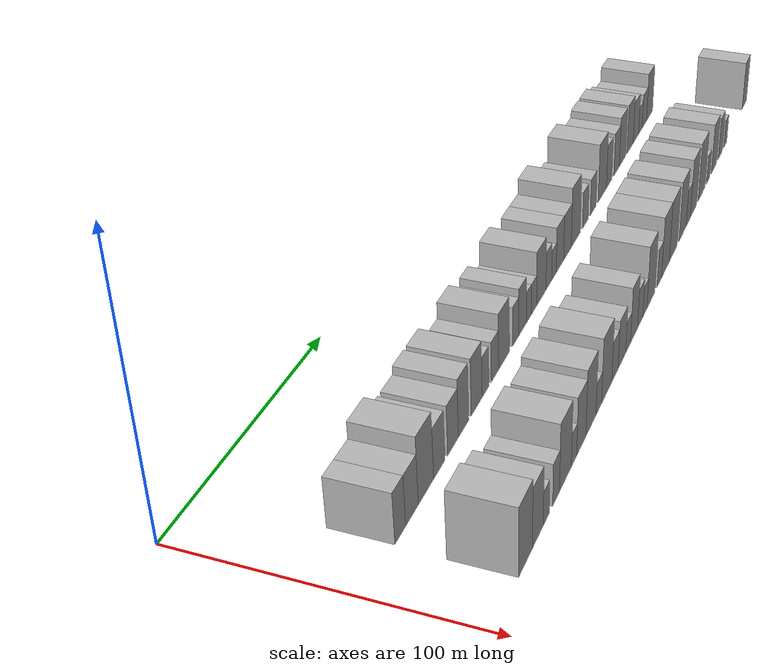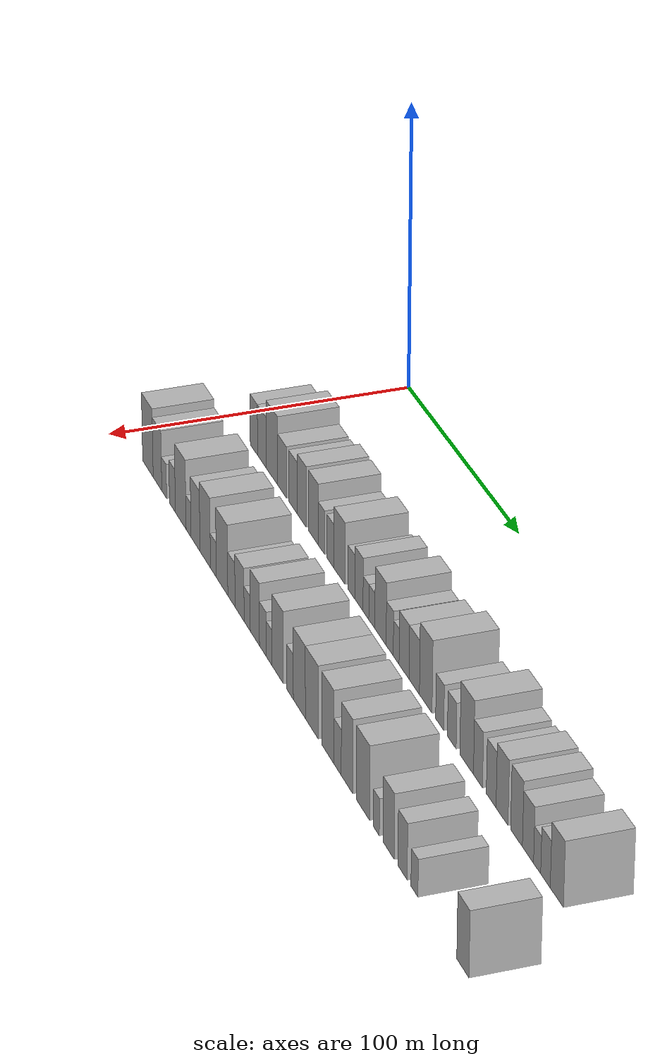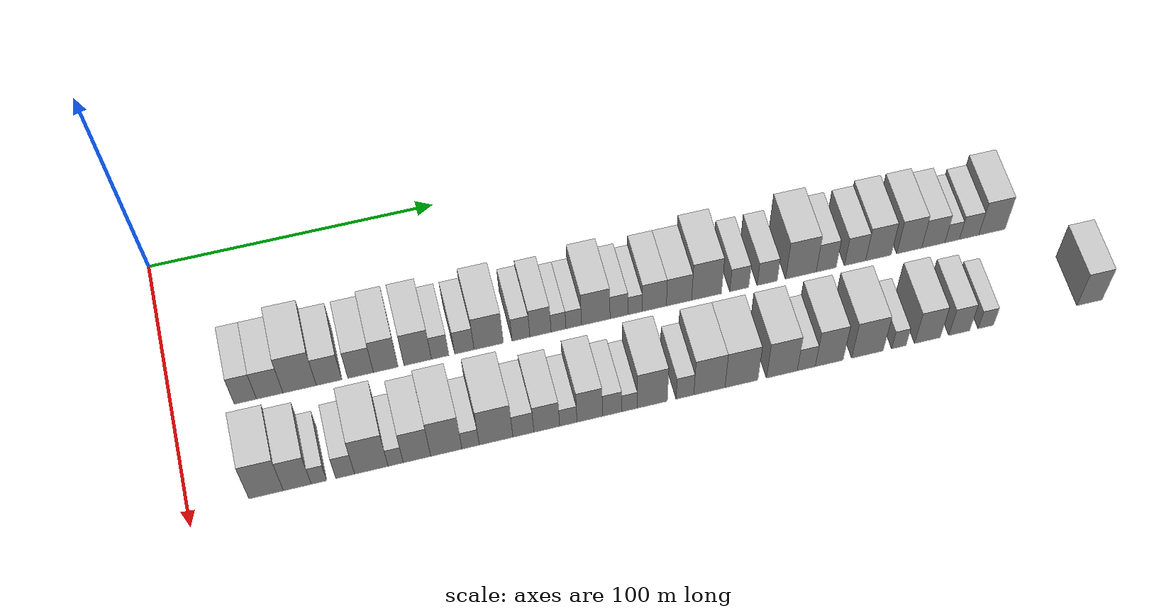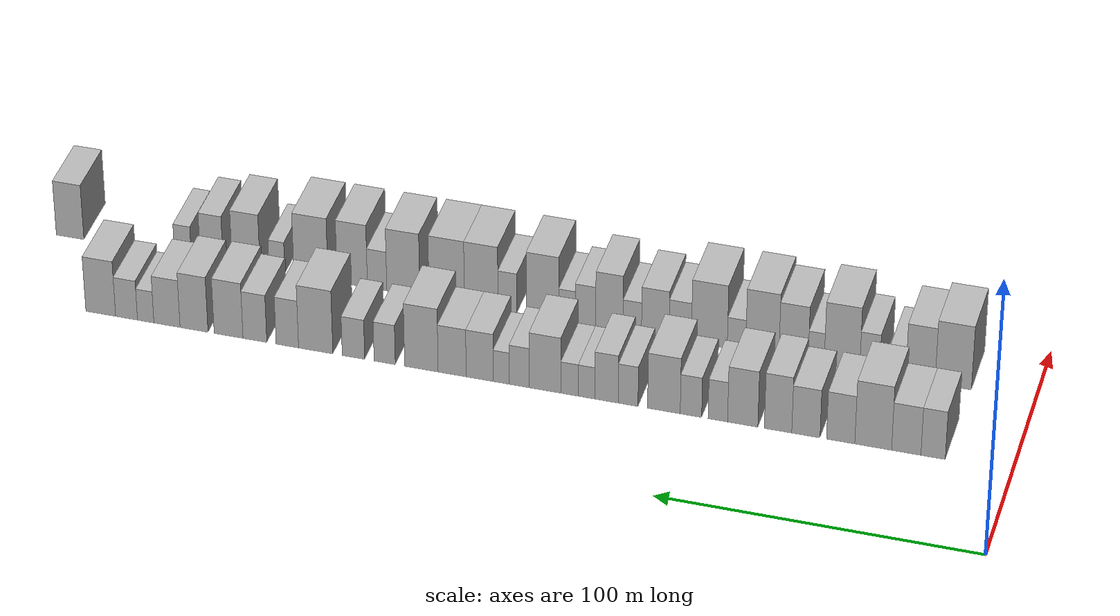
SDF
<sdf version="1.6">
 <world name="default">
  <model name="building_33">
   <static>1</static>
   <pose>50.0000 24.1216 0 0.000000 0.000000 0.000000</pose>
   <link name="link">
    <pose>0 0 9.00 0 0 0</pose>
    <collision name="collision"><geometry><box><size>20.0000 7.4279 18.0000</size></box></geometry></collision>
    <visual name="visual">
     <cast_shadows>0</cast_shadows>
     <geometry><box><size>20.0000 7.4279 18.0000</size></box></geometry>
     <material>
      <script>
       <uri>model://HANNAS_wall/materials/scripts</uri>
       <uri>model://HANNAS_wall/materials/textures</uri>
       <name>vrc/HANNAS_wall</name>
      </script>
     </material>
    </visual>
   </link>
  </model>
  <model name="building_34">
   <static>1</static>
   <pose>50.0000 32.3131 0 0.000000 0.000000 0.000000</pose>
   <link name="link">
    <pose>0 0 9.00 0 0 0</pose>
    <collision name="collision"><geometry><box><size>20.0000 8.9552 18.0000</size></box></geometry></collision>
    <visual name="visual">
     <cast_shadows>0</cast_shadows>
     <geometry><box><size>20.0000 8.9552 18.0000</size></box></geometry>
     <material>
      <script>
       <uri>model://HANNAS_wall/materials/scripts</uri>
       <uri>model://HANNAS_wall/materials/textures</uri>
       <name>vrc/HANNAS_wall</name>
      </script>
     </material>
    </visual>
   </link>
  </model>
  <model name="building_35">
   <static>1</static>
   <pose>50.0000 42.4267 0 0.000000 0.000000 0.000000</pose>
   <link name="link">
    <pose>0 0 12.00 0 0 0</pose>
    <collision name="collision"><geometry><box><size>20.0000 11.2719 24.0000</size></box></geometry></collision>
    <visual name="visual">
     <cast_shadows>0</cast_shadows>
     <geometry><box><size>20.0000 11.2719 24.0000</size></box></geometry>
     <material>
      <script>
       <uri>model://HANNAS_wall/materials/scripts</uri>
       <uri>model://HANNAS_wall/materials/textures</uri>
       <name>vrc/HANNAS_wall</name>
      </script>
     </material>
    </visual>
   </link>
  </model>
  <model name="building_36">
   <static>1</static>
   <pose>50.0000 52.4069 0 0.000000 0.000000 0.000000</pose>
   <link name="link">
    <pose>0 0 9.00 0 0 0</pose>
    <collision name="collision"><geometry><box><size>20.0000 8.6884 18.0000</size></box></geometry></collision>
    <visual name="visual">
     <cast_shadows>0</cast_shadows>
     <geometry><box><size>20.0000 8.6884 18.0000</size></box></geometry>
     <material>
      <script>
       <uri>model://HANNAS_wall/materials/scripts</uri>
       <uri>model://HANNAS_wall/materials/textures</uri>
       <name>vrc/HANNAS_wall</name>
      </script>
     </material>
    </visual>
   </link>
  </model>
  <model name="building_37">
   <static>1</static>
   <pose>50.0000 63.1032 0 0.000000 0.000000 0.000000</pose>
   <link name="link">
    <pose>0 0 9.00 0 0 0</pose>
    <collision name="collision"><geometry><box><size>20.0000 8.7043 18.0000</size></box></geometry></collision>
    <visual name="visual">
     <cast_shadows>0</cast_shadows>
     <geometry><box><size>20.0000 8.7043 18.0000</size></box></geometry>
     <material>
      <script>
       <uri>model://HANNAS_wall/materials/scripts</uri>
       <uri>model://HANNAS_wall/materials/textures</uri>
       <name>vrc/HANNAS_wall</name>
      </script>
     </material>
    </visual>
   </link>
  </model>
  <model name="building_38">
   <static>1</static>
   <pose>50.0000 71.6830 0 0.000000 0.000000 0.000000</pose>
   <link name="link">
    <pose>0 0 10.50 0 0 0</pose>
    <collision name="collision"><geometry><box><size>20.0000 8.4552 21.0000</size></box></geometry></collision>
    <visual name="visual">
     <cast_shadows>0</cast_shadows>
     <geometry><box><size>20.0000 8.4552 21.0000</size></box></geometry>
     <material>
      <script>
       <uri>model://HANNAS_wall/materials/scripts</uri>
       <uri>model://HANNAS_wall/materials/textures</uri>
       <name>vrc/HANNAS_wall</name>
      </script>
     </material>
    </visual>
   </link>
  </model>
  <model name="building_39">
   <static>1</static>
   <pose>50.0000 82.6132 0 0.000000 0.000000 0.000000</pose>
   <link name="link">
    <pose>0 0 10.50 0 0 0</pose>
    <collision name="collision"><geometry><box><size>20.0000 9.4053 21.0000</size></box></geometry></collision>
    <visual name="visual">
     <cast_shadows>0</cast_shadows>
     <geometry><box><size>20.0000 9.4053 21.0000</size></box></geometry>
     <material>
      <script>
       <uri>model://HANNAS_wall/materials/scripts</uri>
       <uri>model://HANNAS_wall/materials/textures</uri>
       <name>vrc/HANNAS_wall</name>
      </script>
     </material>
    </visual>
   </link>
  </model>
  <model name="building_40">
   <static>1</static>
   <pose>50.0000 90.3303 0 0.000000 0.000000 0.000000</pose>
   <link name="link">
    <pose>0 0 7.50 0 0 0</pose>
    <collision name="collision"><geometry><box><size>20.0000 6.0289 15.0000</size></box></geometry></collision>
    <visual name="visual">
     <cast_shadows>0</cast_shadows>
     <geometry><box><size>20.0000 6.0289 15.0000</size></box></geometry>
     <material>
      <script>
       <uri>model://HANNAS_wall/materials/scripts</uri>
       <uri>model://HANNAS_wall/materials/textures</uri>
       <name>vrc/HANNAS_wall</name>
      </script>
     </material>
    </visual>
   </link>
  </model>
  <model name="building_41">
   <static>1</static>
   <pose>50.0000 98.6847 0 0.000000 0.000000 0.000000</pose>
   <link name="link">
    <pose>0 0 7.50 0 0 0</pose>
    <collision name="collision"><geometry><box><size>20.0000 6.6799 15.0000</size></box></geometry></collision>
    <visual name="visual">
     <cast_shadows>0</cast_shadows>
     <geometry><box><size>20.0000 6.6799 15.0000</size></box></geometry>
     <material>
      <script>
       <uri>model://HANNAS_wall/materials/scripts</uri>
       <uri>model://HANNAS_wall/materials/textures</uri>
       <name>vrc/HANNAS_wall</name>
      </script>
     </material>
    </visual>
   </link>
  </model>
  <model name="building_42">
   <static>1</static>
   <pose>50.0000 107.1087 0 0.000000 0.000000 0.000000</pose>
   <link name="link">
    <pose>0 0 10.50 0 0 0</pose>
    <collision name="collision"><geometry><box><size>20.0000 10.1681 21.0000</size></box></geometry></collision>
    <visual name="visual">
     <cast_shadows>0</cast_shadows>
     <geometry><box><size>20.0000 10.1681 21.0000</size></box></geometry>
     <material>
      <script>
       <uri>model://HANNAS_wall/materials/scripts</uri>
       <uri>model://HANNAS_wall/materials/textures</uri>
       <name>vrc/HANNAS_wall</name>
      </script>
     </material>
    </visual>
   </link>
  </model>
  <model name="building_43">
   <static>1</static>
   <pose>50.0000 118.2897 0 0.000000 0.000000 0.000000</pose>
   <link name="link">
    <pose>0 0 7.50 0 0 0</pose>
    <collision name="collision"><geometry><box><size>20.0000 6.1939 15.0000</size></box></geometry></collision>
    <visual name="visual">
     <cast_shadows>0</cast_shadows>
     <geometry><box><size>20.0000 6.1939 15.0000</size></box></geometry>
     <material>
      <script>
       <uri>model://HANNAS_wall/materials/scripts</uri>
       <uri>model://HANNAS_wall/materials/textures</uri>
       <name>vrc/HANNAS_wall</name>
      </script>
     </material>
    </visual>
   </link>
  </model>
  <model name="building_44">
   <static>1</static>
   <pose>50.0000 125.0838 0 0.000000 0.000000 0.000000</pose>
   <link name="link">
    <pose>0 0 9.00 0 0 0</pose>
    <collision name="collision"><geometry><box><size>20.0000 7.3944 18.0000</size></box></geometry></collision>
    <visual name="visual">
     <cast_shadows>0</cast_shadows>
     <geometry><box><size>20.0000 7.3944 18.0000</size></box></geometry>
     <material>
      <script>
       <uri>model://HANNAS_wall/materials/scripts</uri>
       <uri>model://HANNAS_wall/materials/textures</uri>
       <name>vrc/HANNAS_wall</name>
      </script>
     </material>
    </visual>
   </link>
  </model>
  <model name="building_45">
   <static>1</static>
   <pose>50.0000 131.3723 0 0.000000 0.000000 0.000000</pose>
   <link name="link">
    <pose>0 0 6.00 0 0 0</pose>
    <collision name="collision"><geometry><box><size>20.0000 5.1827 12.0000</size></box></geometry></collision>
    <visual name="visual">
     <cast_shadows>0</cast_shadows>
     <geometry><box><size>20.0000 5.1827 12.0000</size></box></geometry>
     <material>
      <script>
       <uri>model://HANNAS_wall/materials/scripts</uri>
       <uri>model://HANNAS_wall/materials/textures</uri>
       <name>vrc/HANNAS_wall</name>
      </script>
     </material>
    </visual>
   </link>
  </model>
  <model name="building_46">
   <static>1</static>
   <pose>50.0000 136.6902 0 0.000000 0.000000 0.000000</pose>
   <link name="link">
    <pose>0 0 6.00 0 0 0</pose>
    <collision name="collision"><geometry><box><size>20.0000 5.4529 12.0000</size></box></geometry></collision>
    <visual name="visual">
     <cast_shadows>0</cast_shadows>
     <geometry><box><size>20.0000 5.4529 12.0000</size></box></geometry>
     <material>
      <script>
       <uri>model://HANNAS_wall/materials/scripts</uri>
       <uri>model://HANNAS_wall/materials/textures</uri>
       <name>vrc/HANNAS_wall</name>
      </script>
     </material>
    </visual>
   </link>
  </model>
  <model name="building_47">
   <static>1</static>
   <pose>50.0000 144.4189 0 0.000000 0.000000 0.000000</pose>
   <link name="link">
    <pose>0 0 10.50 0 0 0</pose>
    <collision name="collision"><geometry><box><size>20.0000 10.0046 21.0000</size></box></geometry></collision>
    <visual name="visual">
     <cast_shadows>0</cast_shadows>
     <geometry><box><size>20.0000 10.0046 21.0000</size></box></geometry>
     <material>
      <script>
       <uri>model://HANNAS_wall/materials/scripts</uri>
       <uri>model://HANNAS_wall/materials/textures</uri>
       <name>vrc/HANNAS_wall</name>
      </script>
     </material>
    </visual>
   </link>
  </model>
  <model name="building_48">
   <static>1</static>
   <pose>50.0000 152.5512 0 0.000000 0.000000 0.000000</pose>
   <link name="link">
    <pose>0 0 7.50 0 0 0</pose>
    <collision name="collision"><geometry><box><size>20.0000 6.2600 15.0000</size></box></geometry></collision>
    <visual name="visual">
     <cast_shadows>0</cast_shadows>
     <geometry><box><size>20.0000 6.2600 15.0000</size></box></geometry>
     <material>
      <script>
       <uri>model://HANNAS_wall/materials/scripts</uri>
       <uri>model://HANNAS_wall/materials/textures</uri>
       <name>vrc/HANNAS_wall</name>
      </script>
     </material>
    </visual>
   </link>
  </model>
  <model name="building_49">
   <static>1</static>
   <pose>50.0000 158.2031 0 0.000000 0.000000 0.000000</pose>
   <link name="link">
    <pose>0 0 6.00 0 0 0</pose>
    <collision name="collision"><geometry><box><size>20.0000 5.0439 12.0000</size></box></geometry></collision>
    <visual name="visual">
     <cast_shadows>0</cast_shadows>
     <geometry><box><size>20.0000 5.0439 12.0000</size></box></geometry>
     <material>
      <script>
       <uri>model://HANNAS_wall/materials/scripts</uri>
       <uri>model://HANNAS_wall/materials/textures</uri>
       <name>vrc/HANNAS_wall</name>
      </script>
     </material>
    </visual>
   </link>
  </model>
  <model name="building_50">
   <static>1</static>
   <pose>50.0000 165.0175 0 0.000000 0.000000 0.000000</pose>
   <link name="link">
    <pose>0 0 9.00 0 0 0</pose>
    <collision name="collision"><geometry><box><size>20.0000 8.5849 18.0000</size></box></geometry></collision>
    <visual name="visual">
     <cast_shadows>0</cast_shadows>
     <geometry><box><size>20.0000 8.5849 18.0000</size></box></geometry>
     <material>
      <script>
       <uri>model://HANNAS_wall/materials/scripts</uri>
       <uri>model://HANNAS_wall/materials/textures</uri>
       <name>vrc/HANNAS_wall</name>
      </script>
     </material>
    </visual>
   </link>
  </model>
  <model name="building_51">
   <static>1</static>
   <pose>50.0000 173.7767 0 0.000000 0.000000 0.000000</pose>
   <link name="link">
    <pose>0 0 9.00 0 0 0</pose>
    <collision name="collision"><geometry><box><size>20.0000 8.9335 18.0000</size></box></geometry></collision>
    <visual name="visual">
     <cast_shadows>0</cast_shadows>
     <geometry><box><size>20.0000 8.9335 18.0000</size></box></geometry>
     <material>
      <script>
       <uri>model://HANNAS_wall/materials/scripts</uri>
       <uri>model://HANNAS_wall/materials/textures</uri>
       <name>vrc/HANNAS_wall</name>
      </script>
     </material>
    </visual>
   </link>
  </model>
  <model name="building_52">
   <static>1</static>
   <pose>50.0000 183.5678 0 0.000000 0.000000 0.000000</pose>
   <link name="link">
    <pose>0 0 12.00 0 0 0</pose>
    <collision name="collision"><geometry><box><size>20.0000 10.6486 24.0000</size></box></geometry></collision>
    <visual name="visual">
     <cast_shadows>0</cast_shadows>
     <geometry><box><size>20.0000 10.6486 24.0000</size></box></geometry>
     <material>
      <script>
       <uri>model://HANNAS_wall/materials/scripts</uri>
       <uri>model://HANNAS_wall/materials/textures</uri>
       <name>vrc/HANNAS_wall</name>
      </script>
     </material>
    </visual>
   </link>
  </model>
  <model name="building_53">
   <static>1</static>
   <pose>50.0000 195.2823 0 0.000000 0.000000 0.000000</pose>
   <link name="link">
    <pose>0 0 7.50 0 0 0</pose>
    <collision name="collision"><geometry><box><size>20.0000 6.7804 15.0000</size></box></geometry></collision>
    <visual name="visual">
     <cast_shadows>0</cast_shadows>
     <geometry><box><size>20.0000 6.7804 15.0000</size></box></geometry>
     <material>
      <script>
       <uri>model://HANNAS_wall/materials/scripts</uri>
       <uri>model://HANNAS_wall/materials/textures</uri>
       <name>vrc/HANNAS_wall</name>
      </script>
     </material>
    </visual>
   </link>
  </model>
  <model name="building_54">
   <static>1</static>
   <pose>50.0000 205.2796 0 0.000000 0.000000 0.000000</pose>
   <link name="link">
    <pose>0 0 7.50 0 0 0</pose>
    <collision name="collision"><geometry><box><size>20.0000 7.2143 15.0000</size></box></geometry></collision>
    <visual name="visual">
     <cast_shadows>0</cast_shadows>
     <geometry><box><size>20.0000 7.2143 15.0000</size></box></geometry>
     <material>
      <script>
       <uri>model://HANNAS_wall/materials/scripts</uri>
       <uri>model://HANNAS_wall/materials/textures</uri>
       <name>vrc/HANNAS_wall</name>
      </script>
     </material>
    </visual>
   </link>
  </model>
  <model name="building_55">
   <static>1</static>
   <pose>50.0000 217.4143 0 0.000000 0.000000 0.000000</pose>
   <link name="link">
    <pose>0 0 12.00 0 0 0</pose>
    <collision name="collision"><geometry><box><size>20.0000 11.0549 24.0000</size></box></geometry></collision>
    <visual name="visual">
     <cast_shadows>0</cast_shadows>
     <geometry><box><size>20.0000 11.0549 24.0000</size></box></geometry>
     <material>
      <script>
       <uri>model://HANNAS_wall/materials/scripts</uri>
       <uri>model://HANNAS_wall/materials/textures</uri>
       <name>vrc/HANNAS_wall</name>
      </script>
     </material>
    </visual>
   </link>
  </model>
  <model name="building_56">
   <static>1</static>
   <pose>50.0000 226.5617 0 0.000000 0.000000 0.000000</pose>
   <link name="link">
    <pose>0 0 9.00 0 0 0</pose>
    <collision name="collision"><geometry><box><size>20.0000 7.2400 18.0000</size></box></geometry></collision>
    <visual name="visual">
     <cast_shadows>0</cast_shadows>
     <geometry><box><size>20.0000 7.2400 18.0000</size></box></geometry>
     <material>
      <script>
       <uri>model://HANNAS_wall/materials/scripts</uri>
       <uri>model://HANNAS_wall/materials/textures</uri>
       <name>vrc/HANNAS_wall</name>
      </script>
     </material>
    </visual>
   </link>
  </model>
  <model name="building_57">
   <static>1</static>
   <pose>50.0000 237.0375 0 0.000000 0.000000 0.000000</pose>
   <link name="link">
    <pose>0 0 9.00 0 0 0</pose>
    <collision name="collision"><geometry><box><size>20.0000 7.7115 18.0000</size></box></geometry></collision>
    <visual name="visual">
     <cast_shadows>0</cast_shadows>
     <geometry><box><size>20.0000 7.7115 18.0000</size></box></geometry>
     <material>
      <script>
       <uri>model://HANNAS_wall/materials/scripts</uri>
       <uri>model://HANNAS_wall/materials/textures</uri>
       <name>vrc/HANNAS_wall</name>
      </script>
     </material>
    </visual>
   </link>
  </model>
  <model name="building_58">
   <static>1</static>
   <pose>50.0000 245.5695 0 0.000000 0.000000 0.000000</pose>
   <link name="link">
    <pose>0 0 10.50 0 0 0</pose>
    <collision name="collision"><geometry><box><size>20.0000 9.3526 21.0000</size></box></geometry></collision>
    <visual name="visual">
     <cast_shadows>0</cast_shadows>
     <geometry><box><size>20.0000 9.3526 21.0000</size></box></geometry>
     <material>
      <script>
       <uri>model://HANNAS_wall/materials/scripts</uri>
       <uri>model://HANNAS_wall/materials/textures</uri>
       <name>vrc/HANNAS_wall</name>
      </script>
     </material>
    </visual>
   </link>
  </model>
  <model name="building_59">
   <static>1</static>
   <pose>50.0000 256.7958 0 0.000000 0.000000 0.000000</pose>
   <link name="link">
    <pose>0 0 10.50 0 0 0</pose>
    <collision name="collision"><geometry><box><size>20.0000 9.1001 21.0000</size></box></geometry></collision>
    <visual name="visual">
     <cast_shadows>0</cast_shadows>
     <geometry><box><size>20.0000 9.1001 21.0000</size></box></geometry>
     <material>
      <script>
       <uri>model://HANNAS_wall/materials/scripts</uri>
       <uri>model://HANNAS_wall/materials/textures</uri>
       <name>vrc/HANNAS_wall</name>
      </script>
     </material>
    </visual>
   </link>
  </model>
  <model name="building_60">
   <static>1</static>
   <pose>50.0000 265.6033 0 0.000000 0.000000 0.000000</pose>
   <link name="link">
    <pose>0 0 9.00 0 0 0</pose>
    <collision name="collision"><geometry><box><size>20.0000 8.5148 18.0000</size></box></geometry></collision>
    <visual name="visual">
     <cast_shadows>0</cast_shadows>
     <geometry><box><size>20.0000 8.5148 18.0000</size></box></geometry>
     <material>
      <script>
       <uri>model://HANNAS_wall/materials/scripts</uri>
       <uri>model://HANNAS_wall/materials/textures</uri>
       <name>vrc/HANNAS_wall</name>
      </script>
     </material>
    </visual>
   </link>
  </model>
  <model name="building_61">
   <static>1</static>
   <pose>50.0000 272.5477 0 0.000000 0.000000 0.000000</pose>
   <link name="link">
    <pose>0 0 6.00 0 0 0</pose>
    <collision name="collision"><geometry><box><size>20.0000 5.3740 12.0000</size></box></geometry></collision>
    <visual name="visual">
     <cast_shadows>0</cast_shadows>
     <geometry><box><size>20.0000 5.3740 12.0000</size></box></geometry>
     <material>
      <script>
       <uri>model://HANNAS_wall/materials/scripts</uri>
       <uri>model://HANNAS_wall/materials/textures</uri>
       <name>vrc/HANNAS_wall</name>
      </script>
     </material>
    </visual>
   </link>
  </model>
  <model name="building_62">
   <static>1</static>
   <pose>50.0000 278.8124 0 0.000000 0.000000 0.000000</pose>
   <link name="link">
    <pose>0 0 7.50 0 0 0</pose>
    <collision name="collision"><geometry><box><size>20.0000 7.1554 15.0000</size></box></geometry></collision>
    <visual name="visual">
     <cast_shadows>0</cast_shadows>
     <geometry><box><size>20.0000 7.1554 15.0000</size></box></geometry>
     <material>
      <script>
       <uri>model://HANNAS_wall/materials/scripts</uri>
       <uri>model://HANNAS_wall/materials/textures</uri>
       <name>vrc/HANNAS_wall</name>
      </script>
     </material>
    </visual>
   </link>
  </model>
  <model name="building_63">
   <static>1</static>
   <pose>50.0000 287.2631 0 0.000000 0.000000 0.000000</pose>
   <link name="link">
    <pose>0 0 10.50 0 0 0</pose>
    <collision name="collision"><geometry><box><size>20.0000 9.7459 21.0000</size></box></geometry></collision>
    <visual name="visual">
     <cast_shadows>0</cast_shadows>
     <geometry><box><size>20.0000 9.7459 21.0000</size></box></geometry>
     <material>
      <script>
       <uri>model://HANNAS_wall/materials/scripts</uri>
       <uri>model://HANNAS_wall/materials/textures</uri>
       <name>vrc/HANNAS_wall</name>
      </script>
     </material>
    </visual>
   </link>
  </model>
  <model name="building_91">
   <static>1</static>
   <pose>85.0000 25.3851 0 0.000000 0.000000 0.000000</pose>
   <link name="link">
    <pose>0 0 12.00 0 0 0</pose>
    <collision name="collision"><geometry><box><size>20.0000 11.2838 24.0000</size></box></geometry></collision>
    <visual name="visual">
     <cast_shadows>0</cast_shadows>
     <geometry><box><size>20.0000 11.2838 24.0000</size></box></geometry>
     <material>
      <script>
       <uri>model://HANNAS_wall/materials/scripts</uri>
       <uri>model://HANNAS_wall/materials/textures</uri>
       <name>vrc/HANNAS_wall</name>
      </script>
     </material>
    </visual>
   </link>
  </model>
  <model name="building_92">
   <static>1</static>
   <pose>85.0000 35.6036 0 0.000000 0.000000 0.000000</pose>
   <link name="link">
    <pose>0 0 10.50 0 0 0</pose>
    <collision name="collision"><geometry><box><size>20.0000 9.1533 21.0000</size></box></geometry></collision>
    <visual name="visual">
     <cast_shadows>0</cast_shadows>
     <geometry><box><size>20.0000 9.1533 21.0000</size></box></geometry>
     <material>
      <script>
       <uri>model://HANNAS_wall/materials/scripts</uri>
       <uri>model://HANNAS_wall/materials/textures</uri>
       <name>vrc/HANNAS_wall</name>
      </script>
     </material>
    </visual>
   </link>
  </model>
  <model name="building_93">
   <static>1</static>
   <pose>85.0000 42.7431 0 0.000000 0.000000 0.000000</pose>
   <link name="link">
    <pose>0 0 6.00 0 0 0</pose>
    <collision name="collision"><geometry><box><size>20.0000 5.1258 12.0000</size></box></geometry></collision>
    <visual name="visual">
     <cast_shadows>0</cast_shadows>
     <geometry><box><size>20.0000 5.1258 12.0000</size></box></geometry>
     <material>
      <script>
       <uri>model://HANNAS_wall/materials/scripts</uri>
       <uri>model://HANNAS_wall/materials/textures</uri>
       <name>vrc/HANNAS_wall</name>
      </script>
     </material>
    </visual>
   </link>
  </model>
  <model name="building_94">
   <static>1</static>
   <pose>85.0000 51.4089 0 0.000000 0.000000 0.000000</pose>
   <link name="link">
    <pose>0 0 7.50 0 0 0</pose>
    <collision name="collision"><geometry><box><size>20.0000 6.2059 15.0000</size></box></geometry></collision>
    <visual name="visual">
     <cast_shadows>0</cast_shadows>
     <geometry><box><size>20.0000 6.2059 15.0000</size></box></geometry>
     <material>
      <script>
       <uri>model://HANNAS_wall/materials/scripts</uri>
       <uri>model://HANNAS_wall/materials/textures</uri>
       <name>vrc/HANNAS_wall</name>
      </script>
     </material>
    </visual>
   </link>
  </model>
  <model name="building_95">
   <static>1</static>
   <pose>85.0000 60.0695 0 0.000000 0.000000 0.000000</pose>
   <link name="link">
    <pose>0 0 12.00 0 0 0</pose>
    <collision name="collision"><geometry><box><size>20.0000 11.1152 24.0000</size></box></geometry></collision>
    <visual name="visual">
     <cast_shadows>0</cast_shadows>
     <geometry><box><size>20.0000 11.1152 24.0000</size></box></geometry>
     <material>
      <script>
       <uri>model://HANNAS_wall/materials/scripts</uri>
       <uri>model://HANNAS_wall/materials/textures</uri>
       <name>vrc/HANNAS_wall</name>
      </script>
     </material>
    </visual>
   </link>
  </model>
  <model name="building_96">
   <static>1</static>
   <pose>85.0000 68.1395 0 0.000000 0.000000 0.000000</pose>
   <link name="link">
    <pose>0 0 6.00 0 0 0</pose>
    <collision name="collision"><geometry><box><size>20.0000 5.0247 12.0000</size></box></geometry></collision>
    <visual name="visual">
     <cast_shadows>0</cast_shadows>
     <geometry><box><size>20.0000 5.0247 12.0000</size></box></geometry>
     <material>
      <script>
       <uri>model://HANNAS_wall/materials/scripts</uri>
       <uri>model://HANNAS_wall/materials/textures</uri>
       <name>vrc/HANNAS_wall</name>
      </script>
     </material>
    </visual>
   </link>
  </model>
  <model name="building_97">
   <static>1</static>
   <pose>85.0000 75.2413 0 0.000000 0.000000 0.000000</pose>
   <link name="link">
    <pose>0 0 10.50 0 0 0</pose>
    <collision name="collision"><geometry><box><size>20.0000 9.1790 21.0000</size></box></geometry></collision>
    <visual name="visual">
     <cast_shadows>0</cast_shadows>
     <geometry><box><size>20.0000 9.1790 21.0000</size></box></geometry>
     <material>
      <script>
       <uri>model://HANNAS_wall/materials/scripts</uri>
       <uri>model://HANNAS_wall/materials/textures</uri>
       <name>vrc/HANNAS_wall</name>
      </script>
     </material>
    </visual>
   </link>
  </model>
  <model name="building_98">
   <static>1</static>
   <pose>85.0000 85.0718 0 0.000000 0.000000 0.000000</pose>
   <link name="link">
    <pose>0 0 12.00 0 0 0</pose>
    <collision name="collision"><geometry><box><size>20.0000 10.4819 24.0000</size></box></geometry></collision>
    <visual name="visual">
     <cast_shadows>0</cast_shadows>
     <geometry><box><size>20.0000 10.4819 24.0000</size></box></geometry>
     <material>
      <script>
       <uri>model://HANNAS_wall/materials/scripts</uri>
       <uri>model://HANNAS_wall/materials/textures</uri>
       <name>vrc/HANNAS_wall</name>
      </script>
     </material>
    </visual>
   </link>
  </model>
  <model name="building_99">
   <static>1</static>
   <pose>85.0000 93.2211 0 0.000000 0.000000 0.000000</pose>
   <link name="link">
    <pose>0 0 6.00 0 0 0</pose>
    <collision name="collision"><geometry><box><size>20.0000 5.8166 12.0000</size></box></geometry></collision>
    <visual name="visual">
     <cast_shadows>0</cast_shadows>
     <geometry><box><size>20.0000 5.8166 12.0000</size></box></geometry>
     <material>
      <script>
       <uri>model://HANNAS_wall/materials/scripts</uri>
       <uri>model://HANNAS_wall/materials/textures</uri>
       <name>vrc/HANNAS_wall</name>
      </script>
     </material>
    </visual>
   </link>
  </model>
  <model name="building_100">
   <static>1</static>
   <pose>85.0000 101.8083 0 0.000000 0.000000 0.000000</pose>
   <link name="link">
    <pose>0 0 12.00 0 0 0</pose>
    <collision name="collision"><geometry><box><size>20.0000 11.3578 24.0000</size></box></geometry></collision>
    <visual name="visual">
     <cast_shadows>0</cast_shadows>
     <geometry><box><size>20.0000 11.3578 24.0000</size></box></geometry>
     <material>
      <script>
       <uri>model://HANNAS_wall/materials/scripts</uri>
       <uri>model://HANNAS_wall/materials/textures</uri>
       <name>vrc/HANNAS_wall</name>
      </script>
     </material>
    </visual>
   </link>
  </model>
  <model name="building_101">
   <static>1</static>
   <pose>85.0000 111.0314 0 0.000000 0.000000 0.000000</pose>
   <link name="link">
    <pose>0 0 7.50 0 0 0</pose>
    <collision name="collision"><geometry><box><size>20.0000 7.0884 15.0000</size></box></geometry></collision>
    <visual name="visual">
     <cast_shadows>0</cast_shadows>
     <geometry><box><size>20.0000 7.0884 15.0000</size></box></geometry>
     <material>
      <script>
       <uri>model://HANNAS_wall/materials/scripts</uri>
       <uri>model://HANNAS_wall/materials/textures</uri>
       <name>vrc/HANNAS_wall</name>
      </script>
     </material>
    </visual>
   </link>
  </model>
  <model name="building_102">
   <static>1</static>
   <pose>85.0000 118.9539 0 0.000000 0.000000 0.000000</pose>
   <link name="link">
    <pose>0 0 9.00 0 0 0</pose>
    <collision name="collision"><geometry><box><size>20.0000 8.7566 18.0000</size></box></geometry></collision>
    <visual name="visual">
     <cast_shadows>0</cast_shadows>
     <geometry><box><size>20.0000 8.7566 18.0000</size></box></geometry>
     <material>
      <script>
       <uri>model://HANNAS_wall/materials/scripts</uri>
       <uri>model://HANNAS_wall/materials/textures</uri>
       <name>vrc/HANNAS_wall</name>
      </script>
     </material>
    </visual>
   </link>
  </model>
  <model name="building_103">
   <static>1</static>
   <pose>85.0000 126.2785 0 0.000000 0.000000 0.000000</pose>
   <link name="link">
    <pose>0 0 6.00 0 0 0</pose>
    <collision name="collision"><geometry><box><size>20.0000 5.8927 12.0000</size></box></geometry></collision>
    <visual name="visual">
     <cast_shadows>0</cast_shadows>
     <geometry><box><size>20.0000 5.8927 12.0000</size></box></geometry>
     <material>
      <script>
       <uri>model://HANNAS_wall/materials/scripts</uri>
       <uri>model://HANNAS_wall/materials/textures</uri>
       <name>vrc/HANNAS_wall</name>
      </script>
     </material>
    </visual>
   </link>
  </model>
  <model name="building_104">
   <static>1</static>
   <pose>85.0000 133.5880 0 0.000000 0.000000 0.000000</pose>
   <link name="link">
    <pose>0 0 10.50 0 0 0</pose>
    <collision name="collision"><geometry><box><size>20.0000 8.7262 21.0000</size></box></geometry></collision>
    <visual name="visual">
     <cast_shadows>0</cast_shadows>
     <geometry><box><size>20.0000 8.7262 21.0000</size></box></geometry>
     <material>
      <script>
       <uri>model://HANNAS_wall/materials/scripts</uri>
       <uri>model://HANNAS_wall/materials/textures</uri>
       <name>vrc/HANNAS_wall</name>
      </script>
     </material>
    </visual>
   </link>
  </model>
  <model name="building_105">
   <static>1</static>
   <pose>85.0000 141.2365 0 0.000000 0.000000 0.000000</pose>
   <link name="link">
    <pose>0 0 7.50 0 0 0</pose>
    <collision name="collision"><geometry><box><size>20.0000 6.5708 15.0000</size></box></geometry></collision>
    <visual name="visual">
     <cast_shadows>0</cast_shadows>
     <geometry><box><size>20.0000 6.5708 15.0000</size></box></geometry>
     <material>
      <script>
       <uri>model://HANNAS_wall/materials/scripts</uri>
       <uri>model://HANNAS_wall/materials/textures</uri>
       <name>vrc/HANNAS_wall</name>
      </script>
     </material>
    </visual>
   </link>
  </model>
  <model name="building_106">
   <static>1</static>
   <pose>85.0000 147.1560 0 0.000000 0.000000 0.000000</pose>
   <link name="link">
    <pose>0 0 6.00 0 0 0</pose>
    <collision name="collision"><geometry><box><size>20.0000 5.2683 12.0000</size></box></geometry></collision>
    <visual name="visual">
     <cast_shadows>0</cast_shadows>
     <geometry><box><size>20.0000 5.2683 12.0000</size></box></geometry>
     <material>
      <script>
       <uri>model://HANNAS_wall/materials/scripts</uri>
       <uri>model://HANNAS_wall/materials/textures</uri>
       <name>vrc/HANNAS_wall</name>
      </script>
     </material>
    </visual>
   </link>
  </model>
  <model name="building_107">
   <static>1</static>
   <pose>85.0000 154.9954 0 0.000000 0.000000 0.000000</pose>
   <link name="link">
    <pose>0 0 12.00 0 0 0</pose>
    <collision name="collision"><geometry><box><size>20.0000 10.4104 24.0000</size></box></geometry></collision>
    <visual name="visual">
     <cast_shadows>0</cast_shadows>
     <geometry><box><size>20.0000 10.4104 24.0000</size></box></geometry>
     <material>
      <script>
       <uri>model://HANNAS_wall/materials/scripts</uri>
       <uri>model://HANNAS_wall/materials/textures</uri>
       <name>vrc/HANNAS_wall</name>
      </script>
     </material>
    </visual>
   </link>
  </model>
  <model name="building_108">
   <static>1</static>
   <pose>85.0000 166.2558 0 0.000000 0.000000 0.000000</pose>
   <link name="link">
    <pose>0 0 7.50 0 0 0</pose>
    <collision name="collision"><geometry><box><size>20.0000 6.1105 15.0000</size></box></geometry></collision>
    <visual name="visual">
     <cast_shadows>0</cast_shadows>
     <geometry><box><size>20.0000 6.1105 15.0000</size></box></geometry>
     <material>
      <script>
       <uri>model://HANNAS_wall/materials/scripts</uri>
       <uri>model://HANNAS_wall/materials/textures</uri>
       <name>vrc/HANNAS_wall</name>
      </script>
     </material>
    </visual>
   </link>
  </model>
  <model name="building_109">
   <static>1</static>
   <pose>85.0000 174.7385 0 0.000000 0.000000 0.000000</pose>
   <link name="link">
    <pose>0 0 12.00 0 0 0</pose>
    <collision name="collision"><geometry><box><size>20.0000 10.8549 24.0000</size></box></geometry></collision>
    <visual name="visual">
     <cast_shadows>0</cast_shadows>
     <geometry><box><size>20.0000 10.8549 24.0000</size></box></geometry>
     <material>
      <script>
       <uri>model://HANNAS_wall/materials/scripts</uri>
       <uri>model://HANNAS_wall/materials/textures</uri>
       <name>vrc/HANNAS_wall</name>
      </script>
     </material>
    </visual>
   </link>
  </model>
  <model name="building_110">
   <static>1</static>
   <pose>85.0000 185.8922 0 0.000000 0.000000 0.000000</pose>
   <link name="link">
    <pose>0 0 12.00 0 0 0</pose>
    <collision name="collision"><geometry><box><size>20.0000 11.4526 24.0000</size></box></geometry></collision>
    <visual name="visual">
     <cast_shadows>0</cast_shadows>
     <geometry><box><size>20.0000 11.4526 24.0000</size></box></geometry>
     <material>
      <script>
       <uri>model://HANNAS_wall/materials/scripts</uri>
       <uri>model://HANNAS_wall/materials/textures</uri>
       <name>vrc/HANNAS_wall</name>
      </script>
     </material>
    </visual>
   </link>
  </model>
  <model name="building_111">
   <static>1</static>
   <pose>85.0000 199.9973 0 0.000000 0.000000 0.000000</pose>
   <link name="link">
    <pose>0 0 12.00 0 0 0</pose>
    <collision name="collision"><geometry><box><size>20.0000 10.7576 24.0000</size></box></geometry></collision>
    <visual name="visual">
     <cast_shadows>0</cast_shadows>
     <geometry><box><size>20.0000 10.7576 24.0000</size></box></geometry>
     <material>
      <script>
       <uri>model://HANNAS_wall/materials/scripts</uri>
       <uri>model://HANNAS_wall/materials/textures</uri>
       <name>vrc/HANNAS_wall</name>
      </script>
     </material>
    </visual>
   </link>
  </model>
  <model name="building_112">
   <static>1</static>
   <pose>85.0000 208.5325 0 0.000000 0.000000 0.000000</pose>
   <link name="link">
    <pose>0 0 7.50 0 0 0</pose>
    <collision name="collision"><geometry><box><size>20.0000 6.3127 15.0000</size></box></geometry></collision>
    <visual name="visual">
     <cast_shadows>0</cast_shadows>
     <geometry><box><size>20.0000 6.3127 15.0000</size></box></geometry>
     <material>
      <script>
       <uri>model://HANNAS_wall/materials/scripts</uri>
       <uri>model://HANNAS_wall/materials/textures</uri>
       <name>vrc/HANNAS_wall</name>
      </script>
     </material>
    </visual>
   </link>
  </model>
  <model name="building_113">
   <static>1</static>
   <pose>85.0000 216.6228 0 0.000000 0.000000 0.000000</pose>
   <link name="link">
    <pose>0 0 12.00 0 0 0</pose>
    <collision name="collision"><geometry><box><size>20.0000 9.8679 24.0000</size></box></geometry></collision>
    <visual name="visual">
     <cast_shadows>0</cast_shadows>
     <geometry><box><size>20.0000 9.8679 24.0000</size></box></geometry>
     <material>
      <script>
       <uri>model://HANNAS_wall/materials/scripts</uri>
       <uri>model://HANNAS_wall/materials/textures</uri>
       <name>vrc/HANNAS_wall</name>
      </script>
     </material>
    </visual>
   </link>
  </model>
  <model name="building_114">
   <static>1</static>
   <pose>85.0000 230.1545 0 0.000000 0.000000 0.000000</pose>
   <link name="link">
    <pose>0 0 12.00 0 0 0</pose>
    <collision name="collision"><geometry><box><size>20.0000 11.1955 24.0000</size></box></geometry></collision>
    <visual name="visual">
     <cast_shadows>0</cast_shadows>
     <geometry><box><size>20.0000 11.1955 24.0000</size></box></geometry>
     <material>
      <script>
       <uri>model://HANNAS_wall/materials/scripts</uri>
       <uri>model://HANNAS_wall/materials/textures</uri>
       <name>vrc/HANNAS_wall</name>
      </script>
     </material>
    </visual>
   </link>
  </model>
  <model name="building_115">
   <static>1</static>
   <pose>85.0000 241.3213 0 0.000000 0.000000 0.000000</pose>
   <link name="link">
    <pose>0 0 6.00 0 0 0</pose>
    <collision name="collision"><geometry><box><size>20.0000 5.1381 12.0000</size></box></geometry></collision>
    <visual name="visual">
     <cast_shadows>0</cast_shadows>
     <geometry><box><size>20.0000 5.1381 12.0000</size></box></geometry>
     <material>
      <script>
       <uri>model://HANNAS_wall/materials/scripts</uri>
       <uri>model://HANNAS_wall/materials/textures</uri>
       <name>vrc/HANNAS_wall</name>
      </script>
     </material>
    </visual>
   </link>
  </model>
  <model name="building_116">
   <static>1</static>
   <pose>85.0000 251.5014 0 0.000000 0.000000 0.000000</pose>
   <link name="link">
    <pose>0 0 10.50 0 0 0</pose>
    <collision name="collision"><geometry><box><size>20.0000 9.2221 21.0000</size></box></geometry></collision>
    <visual name="visual">
     <cast_shadows>0</cast_shadows>
     <geometry><box><size>20.0000 9.2221 21.0000</size></box></geometry>
     <material>
      <script>
       <uri>model://HANNAS_wall/materials/scripts</uri>
       <uri>model://HANNAS_wall/materials/textures</uri>
       <name>vrc/HANNAS_wall</name>
      </script>
     </material>
    </visual>
   </link>
  </model>
  <model name="building_117">
   <static>1</static>
   <pose>85.0000 262.8752 0 0.000000 0.000000 0.000000</pose>
   <link name="link">
    <pose>0 0 9.00 0 0 0</pose>
    <collision name="collision"><geometry><box><size>20.0000 7.5254 18.0000</size></box></geometry></collision>
    <visual name="visual">
     <cast_shadows>0</cast_shadows>
     <geometry><box><size>20.0000 7.5254 18.0000</size></box></geometry>
     <material>
      <script>
       <uri>model://HANNAS_wall/materials/scripts</uri>
       <uri>model://HANNAS_wall/materials/textures</uri>
       <name>vrc/HANNAS_wall</name>
      </script>
     </material>
    </visual>
   </link>
  </model>
  <model name="building_118">
   <static>1</static>
   <pose>85.0000 272.4281 0 0.000000 0.000000 0.000000</pose>
   <link name="link">
    <pose>0 0 6.00 0 0 0</pose>
    <collision name="collision"><geometry><box><size>20.0000 5.5805 12.0000</size></box></geometry></collision>
    <visual name="visual">
     <cast_shadows>0</cast_shadows>
     <geometry><box><size>20.0000 5.5805 12.0000</size></box></geometry>
     <material>
      <script>
       <uri>model://HANNAS_wall/materials/scripts</uri>
       <uri>model://HANNAS_wall/materials/textures</uri>
       <name>vrc/HANNAS_wall</name>
      </script>
     </material>
    </visual>
   </link>
  </model>
  <model name="building_119">
   <static>1</static>
   <pose>85.0000 310.0612 0 0.000000 0.000000 0.000000</pose>
   <link name="link">
    <pose>0 0 10.50 0 0 0</pose>
    <collision name="collision"><geometry><box><size>20.0000 9.2286 21.0000</size></box></geometry></collision>
    <visual name="visual">
     <cast_shadows>0</cast_shadows>
     <geometry><box><size>20.0000 9.2286 21.0000</size></box></geometry>
     <material>
      <script>
       <uri>model://HANNAS_wall/materials/scripts</uri>
       <uri>model://HANNAS_wall/materials/textures</uri>
       <name>vrc/HANNAS_wall</name>
      </script>
     </material>
    </visual>
   </link>
  </model>
 </world>
</sdf>
